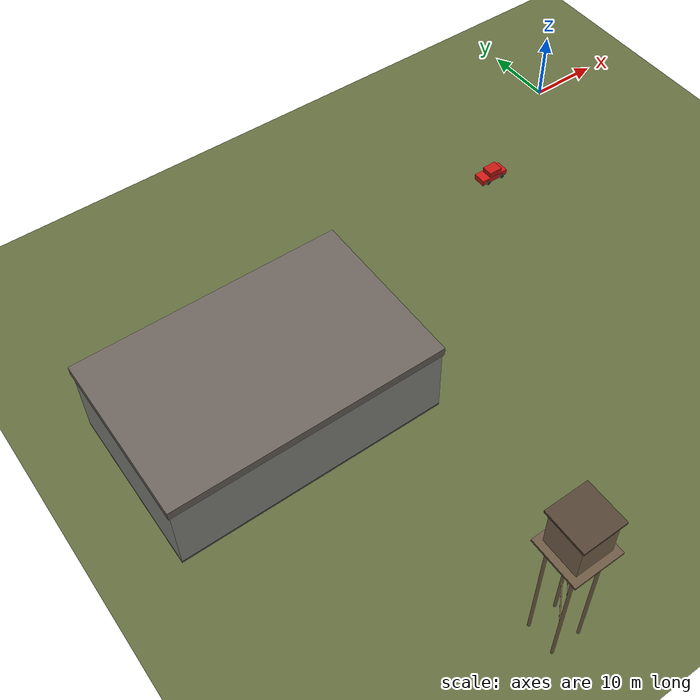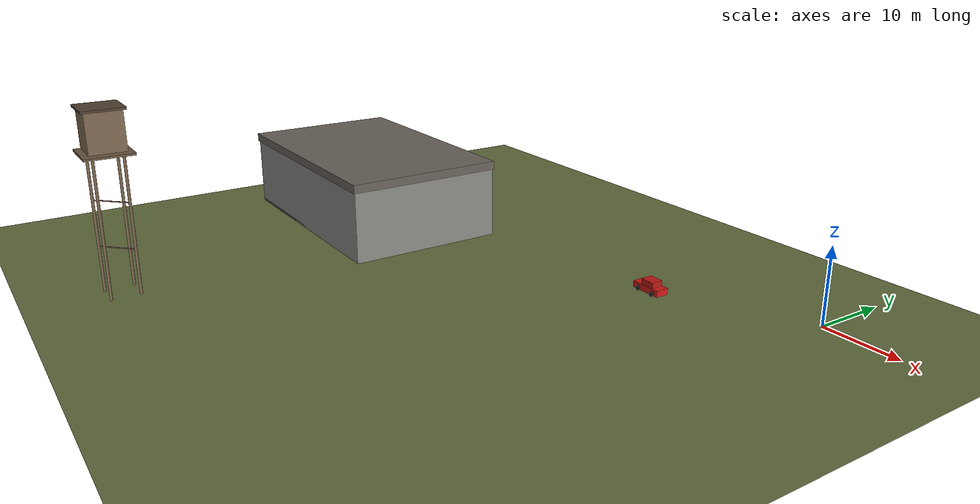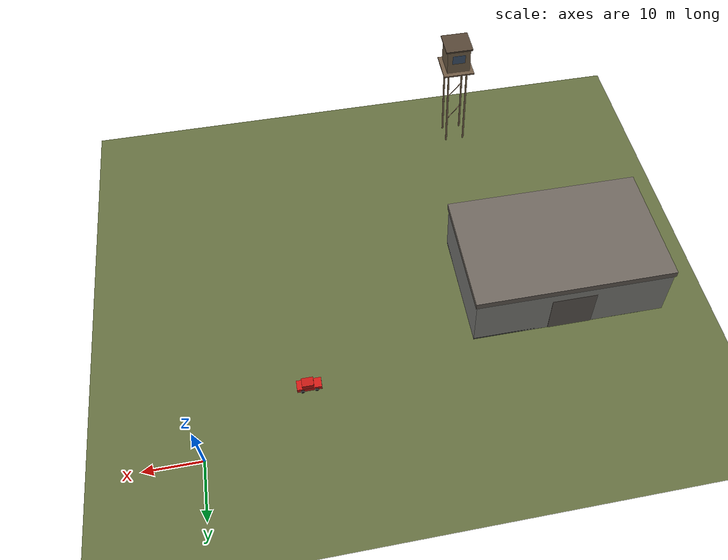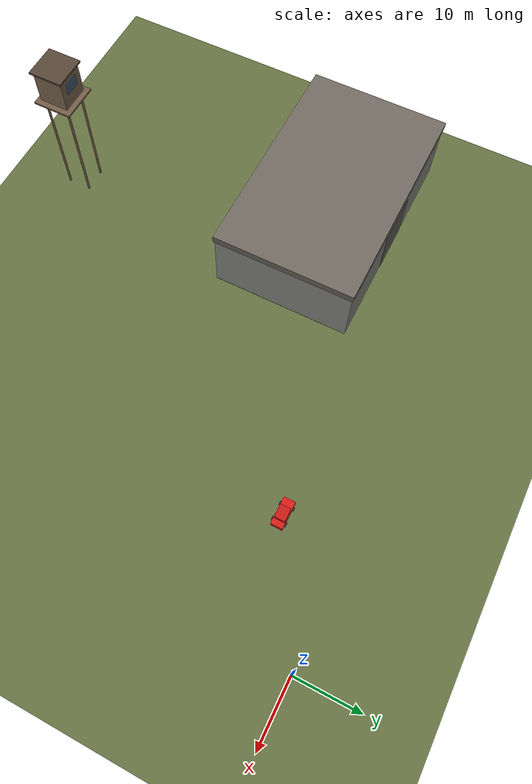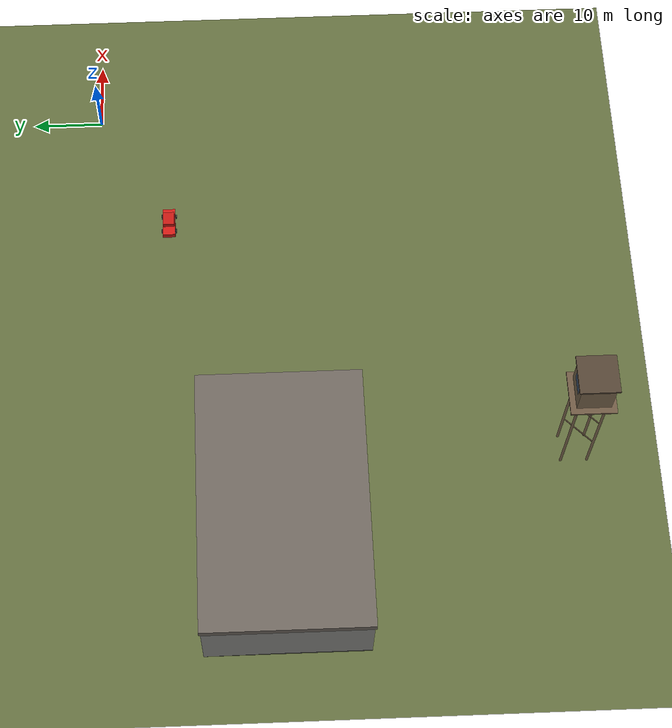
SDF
<sdf version="1.10">
 <world name="pubg_drone_reality">
  <model name="terrain_ground">
   <static>true</static>
   <link name="link">
    <collision name="col">
     <geometry><plane><normal>0 0 1</normal><size>600 600</size></plane></geometry>
     <surface>
      <friction><ode><mu>0.8</mu><mu2>0.8</mu2></ode></friction>
      <contact><ode><kp>1e6</kp><kd>100</kd></ode></contact>
     </surface>
    </collision>
    <visual name="vis">
     <geometry><plane><normal>0 0 1</normal><size>600 600</size></plane></geometry>
     <material>
      <ambient>0.35 0.38 0.22 1</ambient>
      <diffuse>0.38 0.42 0.24 1</diffuse>
      <specular>0.03 0.03 0.02 1</specular>
      <pbr>
       <metal>
        <albedo_map>https://fuel.gazebosim.org/1.0/OpenRobotics/models/Grass%20Plane/tip/files/materials/textures/grass_color.jpg</albedo_map>
        <normal_map>https://fuel.gazebosim.org/1.0/OpenRobotics/models/Grass%20Plane/tip/files/materials/textures/grass_normal.jpg</normal_map>
        <roughness_map>https://fuel.gazebosim.org/1.0/OpenRobotics/models/Grass%20Plane/tip/files/materials/textures/grass_roughness.jpg</roughness_map>
        <metalness>0.0</metalness>
        <roughness>0.9</roughness>
       </metal>
      </pbr>
     </material>
     <plugin name="tile_uv" filename="gz-sim-shader-param-system"/>
    </visual>
   </link>
  </model>
  <model name="warehouse_industrial">
   <static>true</static>
   <pose>-65 -25 0 0 0 0</pose>
   <link name="base">
    <collision name="col"><geometry><box><size>35 22 0.3</size></box></geometry></collision>
    <visual name="vis">
     <pose>0 0 0.15 0 0 0</pose>
     <geometry><box><size>35 22 0.3</size></box></geometry>
     <material><ambient>0.25 0.25 0.25 1</ambient><diffuse>0.3 0.3 0.3 1</diffuse></material>
    </visual>
   </link>
   <link name="walls">
    <collision name="col">
     <pose>0 0 5 0 0 0</pose>
     <geometry><box><size>35 22 10</size></box></geometry>
    </collision>
    <visual name="vis">
     <pose>0 0 5 0 0 0</pose>
     <geometry><box><size>35 22 10</size></box></geometry>
     <material>
      <ambient>0.5 0.5 0.48 1</ambient>
      <diffuse>0.55 0.55 0.53 1</diffuse>
      <specular>0.1 0.1 0.1 1</specular>
      <pbr><metal><metalness>0.3</metalness><roughness>0.7</roughness></metal></pbr>
     </material>
    </visual>
   </link>
   <link name="roof_arch">
    <collision name="col">
     <pose>0 0 10.6 0 0 0</pose>
     <geometry><box><size>35.4 22.4 1.2</size></box></geometry>
    </collision>
    <visual name="vis">
     <pose>0 0 10.6 0 0 0</pose>
     <geometry><box><size>35.4 22.4 1.2</size></box></geometry>
     <material>
      <ambient>0.38 0.35 0.32 1</ambient>
      <diffuse>0.42 0.39 0.36 1</diffuse>
      <pbr><metal><metalness>0.5</metalness><roughness>0.6</roughness></metal></pbr>
     </material>
    </visual>
   </link>
   <link name="warehouse_door">
    <visual name="vis">
     <pose>0 11.02 4 0 0 0</pose>
     <geometry><box><size>8 0.1 8</size></box></geometry>
     <material>
      <ambient>0.35 0.33 0.3 1</ambient>
      <diffuse>0.4 0.38 0.35 1</diffuse>
      <pbr><metal><metalness>0.6</metalness><roughness>0.5</roughness></metal></pbr>
     </material>
    </visual>
   </link>
  </model>
  <model name="watch_tower">
   <static>true</static>
   <pose>-55 -65 0 0 0 0</pose>
   <link name="leg_NE">
    <collision name="col">
     <pose>1.8 1.8 9 0 0 0</pose>
     <geometry><cylinder><radius>0.18</radius><length>18</length></cylinder></geometry>
    </collision>
    <visual name="vis">
     <pose>1.8 1.8 9 0 0 0</pose>
     <geometry><cylinder><radius>0.18</radius><length>18</length></cylinder></geometry>
     <material>
      <ambient>0.42 0.35 0.25 1</ambient>
      <diffuse>0.48 0.4 0.3 1</diffuse>
      <pbr><metal><metalness>0.1</metalness><roughness>0.8</roughness></metal></pbr>
     </material>
    </visual>
   </link>
   <link name="leg_NW">
    <collision name="col">
     <pose>-1.8 1.8 9 0 0 0</pose>
     <geometry><cylinder><radius>0.18</radius><length>18</length></cylinder></geometry>
    </collision>
    <visual name="vis">
     <pose>-1.8 1.8 9 0 0 0</pose>
     <geometry><cylinder><radius>0.18</radius><length>18</length></cylinder></geometry>
     <material>
      <ambient>0.42 0.35 0.25 1</ambient>
      <diffuse>0.48 0.4 0.3 1</diffuse>
      <pbr><metal><metalness>0.1</metalness><roughness>0.8</roughness></metal></pbr>
     </material>
    </visual>
   </link>
   <link name="leg_SE">
    <collision name="col">
     <pose>1.8 -1.8 9 0 0 0</pose>
     <geometry><cylinder><radius>0.18</radius><length>18</length></cylinder></geometry>
    </collision>
    <visual name="vis">
     <pose>1.8 -1.8 9 0 0 0</pose>
     <geometry><cylinder><radius>0.18</radius><length>18</length></cylinder></geometry>
     <material>
      <ambient>0.42 0.35 0.25 1</ambient>
      <diffuse>0.48 0.4 0.3 1</diffuse>
      <pbr><metal><metalness>0.1</metalness><roughness>0.8</roughness></metal></pbr>
     </material>
    </visual>
   </link>
   <link name="leg_SW">
    <collision name="col">
     <pose>-1.8 -1.8 9 0 0 0</pose>
     <geometry><cylinder><radius>0.18</radius><length>18</length></cylinder></geometry>
    </collision>
    <visual name="vis">
     <pose>-1.8 -1.8 9 0 0 0</pose>
     <geometry><cylinder><radius>0.18</radius><length>18</length></cylinder></geometry>
     <material>
      <ambient>0.42 0.35 0.25 1</ambient>
      <diffuse>0.48 0.4 0.3 1</diffuse>
      <pbr><metal><metalness>0.1</metalness><roughness>0.8</roughness></metal></pbr>
     </material>
    </visual>
   </link>
   <link name="brace_1">
    <visual name="vis">
     <pose>0 0 6 0 0 0.785</pose>
     <geometry><box><size>5.1 0.12 0.12</size></box></geometry>
     <material><ambient>0.38 0.3 0.22 1</ambient><diffuse>0.42 0.34 0.26 1</diffuse></material>
    </visual>
   </link>
   <link name="brace_2">
    <visual name="vis">
     <pose>0 0 12 0 0 0.785</pose>
     <geometry><box><size>5.1 0.12 0.12</size></box></geometry>
     <material><ambient>0.38 0.3 0.22 1</ambient><diffuse>0.42 0.34 0.26 1</diffuse></material>
    </visual>
   </link>
   <link name="platform">
    <collision name="col">
     <pose>0 0 18.2 0 0 0</pose>
     <geometry><box><size>6 6 0.3</size></box></geometry>
    </collision>
    <visual name="vis">
     <pose>0 0 18.2 0 0 0</pose>
     <geometry><box><size>6 6 0.3</size></box></geometry>
     <material>
      <ambient>0.38 0.3 0.22 1</ambient>
      <diffuse>0.42 0.34 0.26 1</diffuse>
      <pbr><metal><metalness>0.1</metalness><roughness>0.8</roughness></metal></pbr>
     </material>
    </visual>
   </link>
   <link name="cabin">
    <collision name="col">
     <pose>0 0 21 0 0 0</pose>
     <geometry><box><size>4.5 4.5 5</size></box></geometry>
    </collision>
    <visual name="vis">
     <pose>0 0 21 0 0 0</pose>
     <geometry><box><size>4.5 4.5 5</size></box></geometry>
     <material>
      <ambient>0.45 0.38 0.28 1</ambient>
      <diffuse>0.5 0.42 0.32 1</diffuse>
      <pbr><metal><metalness>0.05</metalness><roughness>0.85</roughness></metal></pbr>
     </material>
    </visual>
   </link>
   <link name="cabin_window">
    <visual name="vis">
     <pose>0 2.26 21.5 0 0 0</pose>
     <geometry><box><size>2.5 0.05 1.8</size></box></geometry>
     <material>
      <ambient>0.15 0.3 0.5 0.6</ambient>
      <diffuse>0.2 0.4 0.65 0.6</diffuse>
      <specular>0.6 0.6 0.6 1</specular>
      <pbr><metal><metalness>0.0</metalness><roughness>0.05</roughness></metal></pbr>
     </material>
    </visual>
   </link>
   <link name="cabin_roof">
    <collision name="col">
     <pose>0 0 23.7 0 0 0</pose>
     <geometry><box><size>5.2 5.2 0.3</size></box></geometry>
    </collision>
    <visual name="vis">
     <pose>0 0 23.7 0 0 0</pose>
     <geometry><box><size>5.2 5.2 0.3</size></box></geometry>
     <material><ambient>0.28 0.22 0.16 1</ambient><diffuse>0.32 0.26 0.2 1</diffuse></material>
    </visual>
   </link>
  </model>
  <model name="sedan_red">
   <static>true</static>
   <pose>-18 -10 0.38 0 0 3.14</pose>
   <link name="body">
    <collision name="col">
     <pose>0 0 0.55 0 0 0</pose>
     <geometry><box><size>4.2 1.8 0.85</size></box></geometry>
    </collision>
    <visual name="vis">
     <pose>0 0 0.55 0 0 0</pose>
     <geometry><box><size>4.2 1.8 0.85</size></box></geometry>
     <material>
      <ambient>0.7 0.08 0.06 1</ambient>
      <diffuse>0.8 0.1 0.08 1</diffuse>
      <specular>0.5 0.5 0.5 1</specular>
      <pbr><metal><metalness>0.4</metalness><roughness>0.3</roughness></metal></pbr>
     </material>
    </visual>
   </link>
   <link name="cabin">
    <collision name="col">
     <pose>-0.2 0 1.3 0 0 0</pose>
     <geometry><box><size>2.0 1.6 0.75</size></box></geometry>
    </collision>
    <visual name="vis">
     <pose>-0.2 0 1.3 0 0 0</pose>
     <geometry><box><size>2.0 1.6 0.75</size></box></geometry>
     <material>
      <ambient>0.65 0.07 0.05 1</ambient>
      <diffuse>0.75 0.09 0.07 1</diffuse>
      <specular>0.5 0.5 0.5 1</specular>
      <pbr><metal><metalness>0.4</metalness><roughness>0.3</roughness></metal></pbr>
     </material>
    </visual>
   </link>
   <link name="wFL">
    <visual name="vis">
     <pose>1.2 1.0 0.32 1.5708 0 0</pose>
     <geometry><cylinder><radius>0.32</radius><length>0.2</length></cylinder></geometry>
     <material><ambient>0.1 0.1 0.1 1</ambient><diffuse>0.12 0.12 0.12 1</diffuse></material>
    </visual>
   </link>
   <link name="wFR">
    <visual name="vis">
     <pose>1.2 -1.0 0.32 1.5708 0 0</pose>
     <geometry><cylinder><radius>0.32</radius><length>0.2</length></cylinder></geometry>
     <material><ambient>0.1 0.1 0.1 1</ambient><diffuse>0.12 0.12 0.12 1</diffuse></material>
    </visual>
   </link>
   <link name="wRL">
    <visual name="vis">
     <pose>-1.2 1.0 0.32 1.5708 0 0</pose>
     <geometry><cylinder><radius>0.32</radius><length>0.2</length></cylinder></geometry>
     <material><ambient>0.1 0.1 0.1 1</ambient><diffuse>0.12 0.12 0.12 1</diffuse></material>
    </visual>
   </link>
   <link name="wRR">
    <visual name="vis">
     <pose>-1.2 -1.0 0.32 1.5708 0 0</pose>
     <geometry><cylinder><radius>0.32</radius><length>0.2</length></cylinder></geometry>
     <material><ambient>0.1 0.1 0.1 1</ambient><diffuse>0.12 0.12 0.12 1</diffuse></material>
    </visual>
   </link>
  </model>
 </world>
</sdf>
